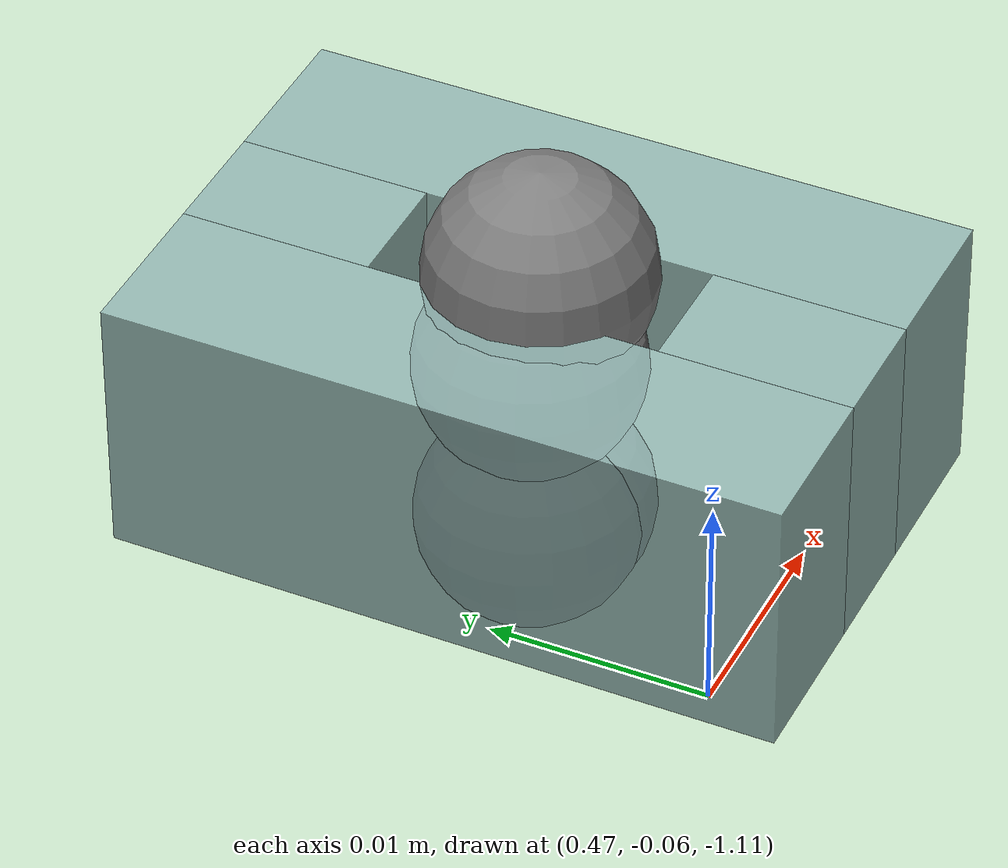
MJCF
<mujoco model="curved_hole">
    <asset>
        <mesh name="hole01" file="hole01.STL" scale="0.001 0.001 0.001" />
        <mesh name="hole02" file="hole02.STL" scale="0.001 0.001 0.001" />
        <mesh name="hole031" file="hole03_1.STL" scale="0.001 0.001 0.001" />
        <mesh name="hole032" file="hole03_2c_8mm.STL" scale="0.001 0.001 0.001" />
        <mesh name="hole033" file="hole03_3.STL" scale="0.001 0.001 0.001" />
    </asset>

    <worldbody>
        <camera mode="trackcom" target="box" pos="0.01 0.25 1.99" axisangle="0 0.5 1.4 3.1415927" />
        <body mocap="true" name="box" pos="0.475 -0.05 -1.1065" quat="0.70710678 0. 0. 0.70710678">

            <body name="hole_object">
                <body name="object1">
                <geom pos="0 0 0" type="mesh" mesh="hole01" rgba="0.5890988217175227 0.7267769175850449 0.7131321273920003 0.8911042944050579" />
                <body name="object2">
                <geom pos="0 0 0" type="mesh" mesh="hole02" rgba="0.5890988217175227 0.7267769175850449 0.7131321273920003 0.8911042944050579" />
                <body name="object3">
                <geom pos="0 0 0" type="mesh" mesh="hole031" rgba="0.5890988217175227 0.7267769175850449 0.7131321273920003 0.8911042944050579" />
                <body name="object4">
                <geom pos="0 0 0" type="mesh" mesh="hole032" rgba="0.5890988217175227 0.7267769175850449 0.7131321273920003 0.8911042944050579" />
                <body name="object5">
                <geom pos="0 0 0" type="mesh" mesh="hole033" rgba="0.5890988217175227 0.7267769175850449 0.7131321273920003 0.8911042944050579" />
                <site name="hole_top" pos="0 0 0.012" type="sphere" size=".005 .005 .005" />
                <site name="hole_center_top" pos="0 0.001 0.008" type="sphere" size=".005 .005 .005" />
                <site name="hole_center_bottom" pos="0 0.001 0" type="sphere" size=".005 .005 .005" />
                <site name="hole_bottom" pos="0 0 0" type="sphere" size=".005 .005 .005" />
                </body>
                </body>
                </body>
                </body>
                </body>
            </body>
        </body>
    </worldbody>
</mujoco>
